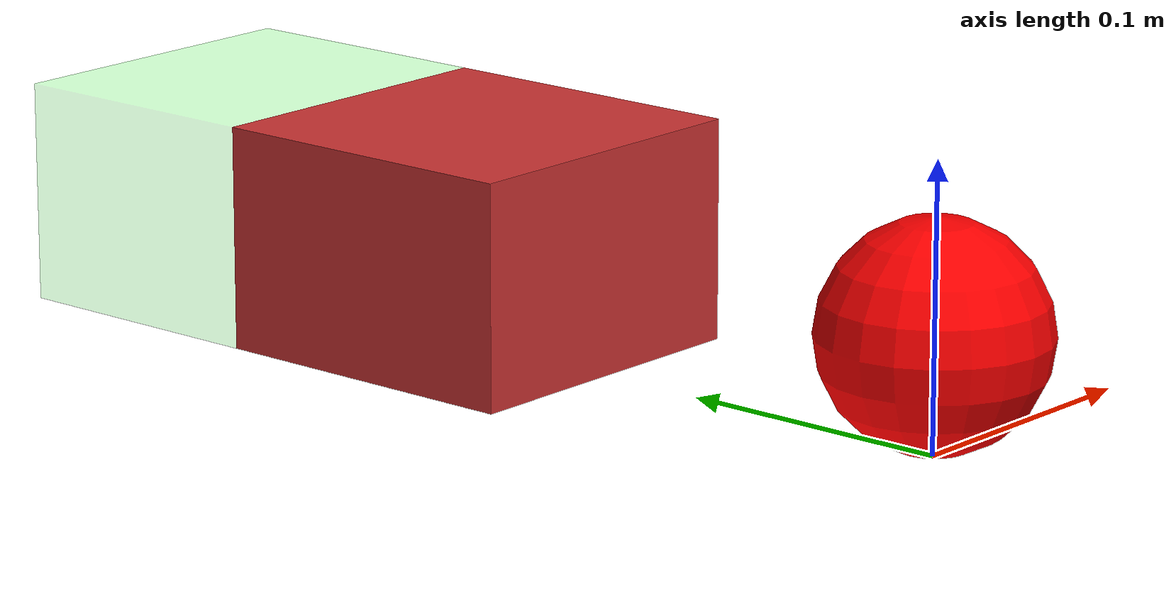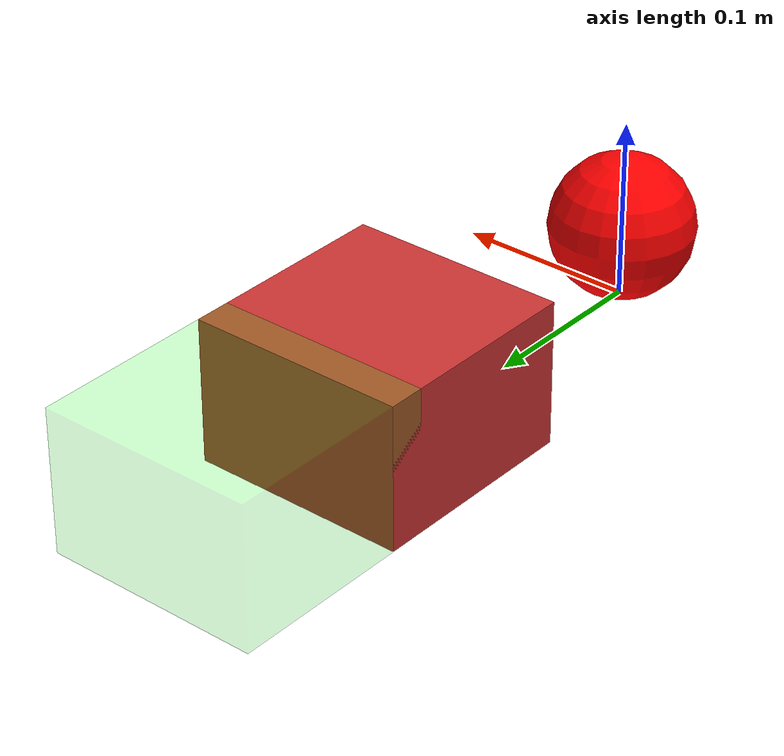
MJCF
<mujoco model="pushbox">

  <option timestep="0.005" iterations="5" ls_iterations="8" integrator="implicitfast">
    <flag eulerdamp="disable"/>
  </option>
  <custom>
    <numeric data="5" name="max_contact_points"/>
    <numeric data="5" name="max_geom_pairs"/>
  </custom>

  <default>
    <default class="goal">
      <geom conaffinity="0" contype="0" rgba="0 1 0 0.2"/>
    </default>
    <default class="translation">
      <position kp="20" kv="5" ctrlrange="-0.75 0.75"/>
    </default>
    <geom friction="1"/>
  </default>

  <worldbody>
    <!-- Reference site for Cartesian control -->
    <site name="reference" pos="0.0 0.0 0.04" size="0.01" rgba="1 0 0 0.0"/>

    <!-- Replace static goal with mocap body -->
    <body name="goal" mocap="true" pos="0.0 0.3 0.04">
      <geom class="goal" name="goal_cube" type="box" size="0.06 0.06 0.04"/>
    </body>

    <body name="box" pos="0.0 0.2 0.04">
      <joint type="free"/>
      <geom name="box_geom" type="box" size="0.06 0.06 0.04" rgba="0.8 0.2 0.2 1"
            condim="3" friction="0.6" contype="2" conaffinity="1" solref="0.02 1" priority="1"/>
      <site name="box_site" pos="0 0 0" size="0.005"/>
      <inertial pos="0 0 0" mass="0.5" diaginertia="0.001 0.001 0.001"/>
    </body>

    <body name="pusher" pos="0 0.0 0.041">
      <joint name="root_x" type="slide" pos="0 0 0" axis="1 0 0" />
      <joint name="root_y" type="slide" pos="0 0 0" axis="0 1 0" />
      <geom name="pusher" type="sphere" size="0.04" rgba="1 0 0 1" contype="1" conaffinity="1"/>
      <site name="pusher" pos="0 0 0" size="0.04" rgba="1 0 0 0" />
    </body>
  </worldbody>

  <actuator>
    <position name="x" site="pusher" refsite="reference" gear="1 0 0 0 0 0" class="translation"/>
    <position name="y" site="pusher" refsite="reference" gear="0 1 0 0 0 0" class="translation"/>
  </actuator>

  <sensor>
    <framepos name="box_position" objtype="body" objname="box" reftype="site" refname="reference" />
    <framequat name="box_orientation" objtype="body" objname="box" reftype="site" refname="reference"/>
  </sensor>
</mujoco>
